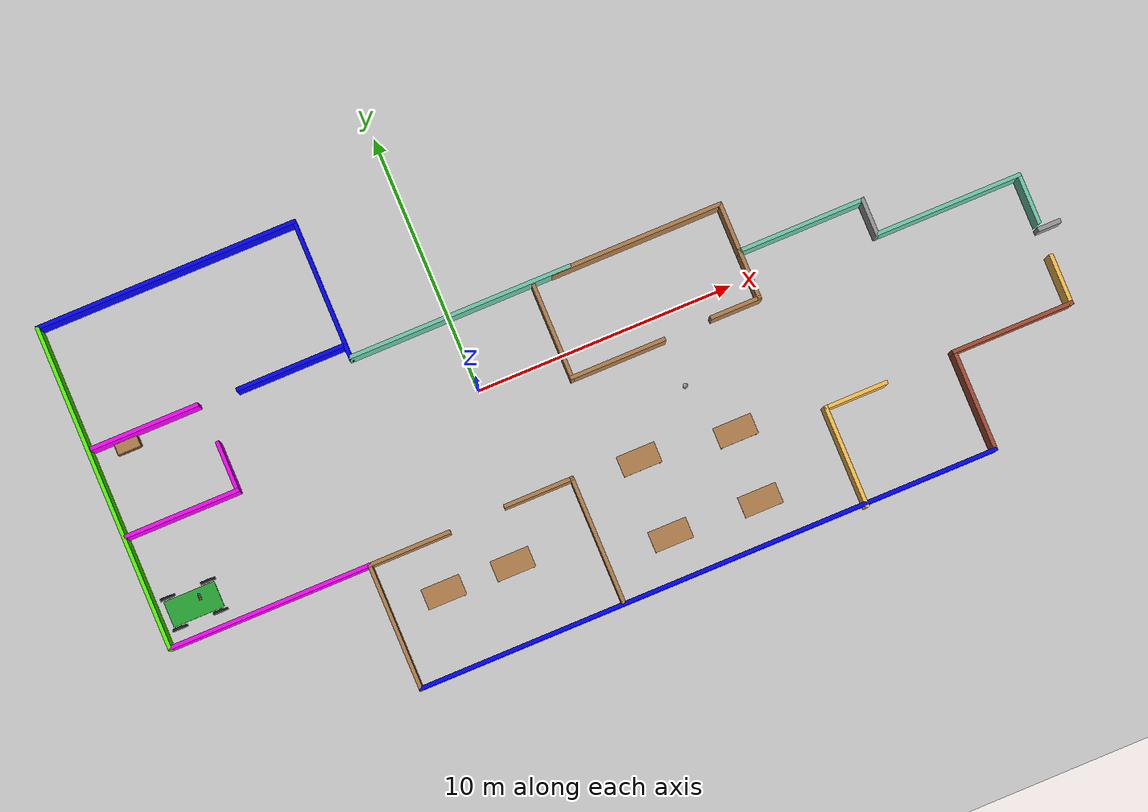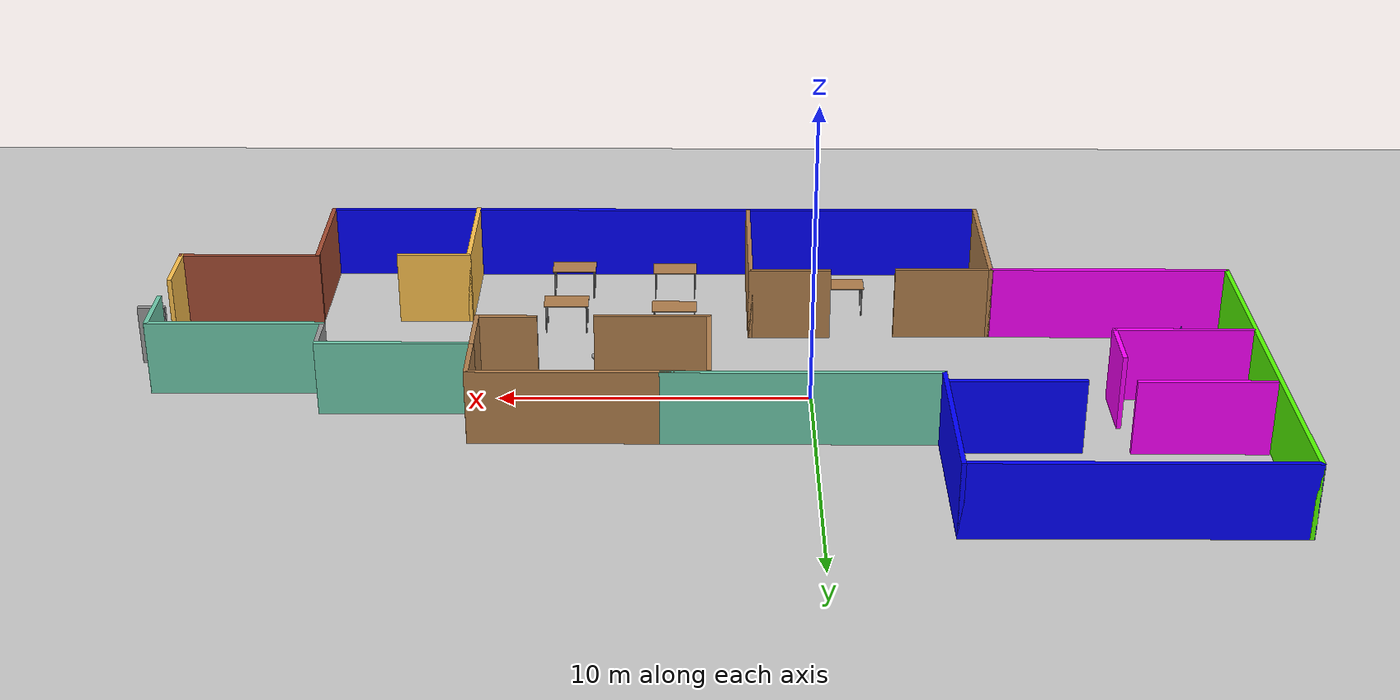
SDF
<sdf version="1.6">
 <world name="default">
  <light name="sun" type="directional">
   <pose>0 0 10 0 -0 0</pose>
   <diffuse>0.8 0.8 0.8 1</diffuse>
   <specular>0.2 0.2 0.2 1</specular>
   <attenuation>
    <range>1000</range>
    <constant>0.9</constant>
    <linear>0.01</linear>
    <quadratic>0.001</quadratic>
   </attenuation>
   <direction>-0.5 0.1 -0.9</direction>
  </light>
  <model name="ground_plane">
   <static>1</static>
   <link name="link">
    <collision name="collision">
     <geometry><plane><normal>0 0 1</normal><size>100 100</size></plane></geometry>
     <surface><friction><ode><mu>100</mu><mu2>50</mu2></ode></friction></surface>
    </collision>
    <visual name="visual">
     <cast_shadows>0</cast_shadows>
     <geometry><plane><normal>0 0 1</normal><size>100 100</size></plane></geometry>
     <material>
      <script><uri>file://media/materials/scripts/gazebo.material</uri><name>Gazebo/Grey</name></script>
     </material>
    </visual>
   </link>
  </model>
  <gravity>0 0 -9.8</gravity>
  <magnetic_field>6e-06 2.3e-05 -4.2e-05</magnetic_field>
  <atmosphere type="adiabatic"/>
  <physics name="default_physics" default="0" type="ode">
   <max_step_size>0.001</max_step_size>
   <real_time_factor>1</real_time_factor>
   <real_time_update_rate>1000</real_time_update_rate>
  </physics>
  <scene><ambient>0.4 0.4 0.4 1</ambient><background>0.7 0.7 0.7 1</background><shadows>1</shadows></scene>
  <spherical_coordinates>
   <surface_model>EARTH_WGS84</surface_model>
   <latitude_deg>0</latitude_deg>
   <longitude_deg>0</longitude_deg>
   <elevation>0</elevation>
   <heading_deg>0</heading_deg>
  </spherical_coordinates>
  <model name="NewWorld">
   <pose>3.5857 -0.61856 0 0 -0 0</pose>
   <link name="Door_0">
    <collision name="Door_0_Collision">
     <geometry><box><size>0.9 0.17 2</size></box></geometry>
     <pose>0 0 1 0 -0 0</pose>
    </collision>
    <visual name="Door_0_Visual">
     <pose>0 0 1 0 -0 0</pose>
     <geometry><box><size>0.9 0.17 2</size></box></geometry>
     <material>
      <script><uri>file://media/materials/scripts/gazebo.material</uri><name>Gazebo/Grey</name></script>
     </material>
    </visual>
    <pose>17.9089 -1.88994 0 0 -0 0</pose>
   </link>
   <link name="Wall_10">
    <collision name="Wall_10_Collision">
     <geometry><box><size>2 0.15 2.5</size></box></geometry>
     <pose>0 0 1.25 0 -0 0</pose>
    </collision>
    <visual name="Wall_10_Visual">
     <pose>0 0 1.25 0 -0 0</pose>
     <geometry><box><size>2 0.15 2.5</size></box></geometry>
     <material>
      <script><uri>file://media/materials/scripts/gazebo.material</uri><name>Gazebo/Wood</name></script>
      <ambient>1 1 1 1</ambient>
     </material>
     <meta><layer>0</layer></meta>
    </visual>
    <pose>7.1038 2.47583 0 0 0 -1.5708</pose>
   </link>
   <link name="Wall_11">
    <collision name="Wall_11_Collision">
     <geometry><box><size>5 0.15 2.5</size></box></geometry>
     <pose>0 0 1.25 0 -0 0</pose>
    </collision>
    <visual name="Wall_11_Visual">
     <pose>0 0 1.25 0 -0 0</pose>
     <geometry><box><size>5 0.15 2.5</size></box></geometry>
     <material>
      <script><uri>file://media/materials/scripts/gazebo.material</uri><name>Gazebo/Grey</name></script>
      <ambient>0.435294 0.796078 0.67451 1</ambient>
     </material>
     <meta><layer>0</layer></meta>
    </visual>
    <pose>9.5288 1.55083 0 0 -0 0</pose>
   </link>
   <link name="Wall_12">
    <collision name="Wall_12_Collision">
     <geometry><box><size>1.5 0.15 2.5</size></box></geometry>
     <pose>0 0 1.25 0 -0 0</pose>
    </collision>
    <visual name="Wall_12_Visual">
     <pose>0 0 1.25 0 -0 0</pose>
     <geometry><box><size>1.5 0.15 2.5</size></box></geometry>
     <material>
      <script><uri>file://media/materials/scripts/gazebo.material</uri><name>Gazebo/Grey</name></script>
      <ambient>1 1 1 1</ambient>
     </material>
     <meta><layer>0</layer></meta>
    </visual>
    <pose>11.9538 0.87583 0 0 0 -1.5708</pose>
   </link>
   <link name="Wall_13">
    <collision name="Wall_13_Collision">
     <geometry><box><size>5.75 0.15 2.5</size></box></geometry>
     <pose>0 0 1.25 0 -0 0</pose>
    </collision>
    <visual name="Wall_13_Visual">
     <pose>0 0 1.25 0 -0 0</pose>
     <geometry><box><size>5.75 0.15 2.5</size></box></geometry>
     <material>
      <script><uri>file://media/materials/scripts/gazebo.material</uri><name>Gazebo/Grey</name></script>
      <ambient>0.435294 0.796078 0.67451 1</ambient>
     </material>
     <meta><layer>0</layer></meta>
    </visual>
    <pose>14.7538 0.20083 0 0 -0 0</pose>
   </link>
   <link name="Wall_15">
    <collision name="Wall_15_Collision">
     <geometry><box><size>2 0.15 2.5</size></box></geometry>
     <pose>0 0 1.25 0 -0 0</pose>
    </collision>
    <visual name="Wall_15_Visual">
     <pose>0 0 1.25 0 -0 0</pose>
     <geometry><box><size>2 0.15 2.5</size></box></geometry>
     <material>
      <script><uri>file://media/materials/scripts/gazebo.material</uri><name>Gazebo/Grey</name></script>
      <ambient>0.435294 0.796078 0.67451 1</ambient>
     </material>
     <meta><layer>0</layer></meta>
    </visual>
    <pose>17.5538 -0.72417 0 0 0 -1.5708</pose>
   </link>
   <link name="Wall_18">
    <collision name="Wall_18_Collision">
     <geometry><box><size>2 0.15 2.5</size></box></geometry>
     <pose>0 0 1.25 0 -0 0</pose>
    </collision>
    <visual name="Wall_18_Visual">
     <pose>0 0 1.25 0 -0 0</pose>
     <geometry><box><size>2 0.15 2.5</size></box></geometry>
     <material>
      <script><uri>file://media/materials/scripts/gazebo.material</uri><name>Gazebo/Grey</name></script>
      <ambient>1 0.764706 0.305882 1</ambient>
     </material>
     <meta><layer>0</layer></meta>
    </visual>
    <pose>17.4962 -3.90606 0 0 0 -1.5708</pose>
   </link>
   <link name="Wall_19">
    <collision name="Wall_19_Collision">
     <geometry><box><size>4.75 0.15 2.5</size></box></geometry>
     <pose>0 0 1.25 0 -0 0</pose>
    </collision>
    <visual name="Wall_19_Visual">
     <pose>0 0 1.25 0 -0 0</pose>
     <geometry><box><size>4.75 0.15 2.5</size></box></geometry>
     <material>
      <script><uri>file://media/materials/scripts/gazebo.material</uri><name>Gazebo/Bricks</name></script>
      <ambient>1 0.764706 0.305882 1</ambient>
     </material>
     <meta><layer>0</layer></meta>
    </visual>
    <pose>15.1962 -4.83106 0 0 -0 3.14159</pose>
   </link>
   <link name="Wall_20">
    <collision name="Wall_20_Collision">
     <geometry><box><size>4 0.15 2.5</size></box></geometry>
     <pose>0 0 1.25 0 -0 0</pose>
    </collision>
    <visual name="Wall_20_Visual">
     <pose>0 0 1.25 0 -0 0</pose>
     <geometry><box><size>4 0.15 2.5</size></box></geometry>
     <material>
      <script><uri>file://media/materials/scripts/gazebo.material</uri><name>Gazebo/Bricks</name></script>
      <ambient>0.996078 0.47451 0.0196078 1</ambient>
     </material>
     <meta><layer>0</layer></meta>
    </visual>
    <pose>12.8962 -6.75606 0 0 0 -1.5708</pose>
   </link>
   <link name="Wall_21">
    <collision name="Wall_21_Collision">
     <geometry><box><size>22.75 0.15 2.5</size></box></geometry>
     <pose>0 0 1.25 0 -0 0</pose>
    </collision>
    <visual name="Wall_21_Visual">
     <pose>0 0 1.25 0 -0 0</pose>
     <geometry><box><size>22.75 0.15 2.5</size></box></geometry>
     <material>
      <script><uri>file://media/materials/scripts/gazebo.material</uri><name>Gazebo/Grey</name></script>
      <ambient>0 0 1 1</ambient>
     </material>
     <meta><layer>0</layer></meta>
    </visual>
    <pose>1.5962 -8.68106 0 0 -0 3.14159</pose>
   </link>
   <link name="Wall_22">
    <collision name="Wall_22_Collision">
     <geometry><box><size>5 0.15 2.5</size></box></geometry>
     <pose>0 0 1.25 0 -0 0</pose>
    </collision>
    <visual name="Wall_22_Visual">
     <pose>0 0 1.25 0 -0 0</pose>
     <geometry><box><size>5 0.15 2.5</size></box></geometry>
     <material>
      <script><uri>file://media/materials/scripts/gazebo.material</uri><name>Gazebo/Wood</name></script>
      <ambient>1 1 1 1</ambient>
     </material>
     <meta><layer>0</layer></meta>
    </visual>
    <pose>-9.7038 -6.25606 0 0 -0 1.5708</pose>
   </link>
   <link name="Wall_23">
    <collision name="Wall_23_Collision">
     <geometry><box><size>8 0.15 2.5</size></box></geometry>
     <pose>0 0 1.25 0 -0 0</pose>
    </collision>
    <visual name="Wall_23_Visual">
     <pose>0 0 1.25 0 -0 0</pose>
     <geometry><box><size>8 0.15 2.5</size></box></geometry>
     <material>
      <script><uri>file://media/materials/scripts/gazebo.material</uri><name>Gazebo/Grey</name></script>
      <ambient>1 0 1 1</ambient>
     </material>
     <meta><layer>0</layer></meta>
    </visual>
    <pose>-13.6288 -3.83106 0 0 -0 3.14159</pose>
   </link>
   <link name="Wall_24">
    <collision name="Wall_24_Collision">
     <geometry><box><size>12.75 0.15 2.5</size></box></geometry>
     <pose>0 0 1.25 0 -0 0</pose>
    </collision>
    <visual name="Wall_24_Visual">
     <pose>0 0 1.25 0 -0 0</pose>
     <geometry><box><size>12.75 0.15 2.5</size></box></geometry>
     <material>
      <script><uri>file://media/materials/scripts/gazebo.material</uri><name>Gazebo/Grey</name></script>
      <ambient>0.333333 1 0 1</ambient>
     </material>
     <meta><layer>0</layer></meta>
    </visual>
    <pose>-17.5538 2.46894 0 0 -0 1.5708</pose>
   </link>
   <link name="Wall_25">
    <collision name="Wall_25_Collision">
     <geometry><box><size>10.25 0.15 2.5</size></box></geometry>
     <pose>0 0 1.25 0 -0 0</pose>
    </collision>
    <visual name="Wall_25_Visual">
     <pose>0 0 1.25 0 -0 0</pose>
     <geometry><box><size>10.25 0.15 2.5</size></box></geometry>
     <material>
      <script><uri>file://media/materials/scripts/gazebo.material</uri><name>Gazebo/Grey</name></script>
      <ambient>0 0 1 1</ambient>
     </material>
     <meta><layer>0</layer></meta>
    </visual>
    <pose>-12.5038 8.76894 0 0 -0 0</pose>
   </link>
   <link name="Wall_26">
    <collision name="Wall_26_Collision">
     <geometry><box><size>5.5 0.15 2.5</size></box></geometry>
     <pose>0 0 1.25 0 -0 0</pose>
    </collision>
    <visual name="Wall_26_Visual">
     <pose>0 0 1.25 0 -0 0</pose>
     <geometry><box><size>5.5 0.15 2.5</size></box></geometry>
     <material>
      <script><uri>file://media/materials/scripts/gazebo.material</uri><name>Gazebo/Grey</name></script>
      <ambient>0 0 1 1</ambient>
     </material>
     <meta><layer>0</layer></meta>
    </visual>
    <pose>-7.4538 6.09394 0 0 0 -1.5708</pose>
   </link>
   <link name="Wall_27">
    <collision name="Wall_27_Collision">
     <geometry><box><size>8.75 0.15 2.5</size></box></geometry>
     <pose>0 0 1.25 0 -0 0</pose>
    </collision>
    <visual name="Wall_27_Visual">
     <pose>0 0 1.25 0 -0 0</pose>
     <geometry><box><size>8.75 0.15 2.5</size></box></geometry>
     <material>
      <script><uri>file://media/materials/scripts/gazebo.material</uri><name>Gazebo/Grey</name></script>
      <ambient>0.435294 0.796078 0.67451 1</ambient>
     </material>
     <meta><layer>0</layer></meta>
    </visual>
    <pose>-3.1538 3.41894 0 0 -0 0</pose>
   </link>
   <link name="Wall_29">
    <collision name="Wall_29_Collision">
     <geometry><box><size>3.75 0.15 2.5</size></box></geometry>
     <pose>0 0 1.25 0 -0 0</pose>
    </collision>
    <visual name="Wall_29_Visual">
     <pose>0 0 1.25 0 -0 0</pose>
     <geometry><box><size>3.75 0.15 2.5</size></box></geometry>
     <material>
      <script><uri>file://media/materials/scripts/gazebo.material</uri><name>Gazebo/Wood</name></script>
      <ambient>1 1 1 1</ambient>
     </material>
     <meta><layer>0</layer></meta>
    </visual>
    <pose>-0.300811 1.43676 0 0 0 -1.5708</pose>
   </link>
   <link name="Wall_30">
    <collision name="Wall_30_Collision">
     <geometry><box><size>3.75 0.15 2.5</size></box></geometry>
     <pose>0 0 1.25 0 -0 0</pose>
    </collision>
    <visual name="Wall_30_Visual">
     <pose>0 0 1.25 0 -0 0</pose>
     <geometry><box><size>3.75 0.15 2.5</size></box></geometry>
     <material>
      <script><uri>file://media/materials/scripts/gazebo.material</uri><name>Gazebo/Wood</name></script>
      <ambient>1 1 1 1</ambient>
     </material>
     <meta><layer>0</layer></meta>
    </visual>
    <pose>1.49919 -0.363238 0 0 -0 0</pose>
   </link>
   <link name="Wall_35">
    <collision name="Wall_35_Collision">
     <geometry><box><size>2 0.15 2.5</size></box></geometry>
     <pose>0 0 1.25 0 -0 0</pose>
    </collision>
    <visual name="Wall_35_Visual">
     <pose>0 0 1.25 0 -0 0</pose>
     <geometry><box><size>2 0.15 2.5</size></box></geometry>
     <material>
      <script><uri>file://media/materials/scripts/gazebo.material</uri><name>Gazebo/Wood</name></script>
      <ambient>1 1 1 1</ambient>
     </material>
     <meta><layer>0</layer></meta>
    </visual>
    <pose>7.1038 0.62583 0 0 0 -1.5708</pose>
   </link>
   <link name="Wall_36">
    <collision name="Wall_36_Collision">
     <geometry><box><size>2 0.15 2.5</size></box></geometry>
     <pose>0 0 1.25 0 -0 0</pose>
    </collision>
    <visual name="Wall_36_Visual">
     <pose>0 0 1.25 0 -0 0</pose>
     <geometry><box><size>2 0.15 2.5</size></box></geometry>
     <material>
      <script><uri>file://media/materials/scripts/gazebo.material</uri><name>Gazebo/Wood</name></script>
      <ambient>1 1 1 1</ambient>
     </material>
     <meta><layer>0</layer></meta>
    </visual>
    <pose>6.1788 -0.29917 0 0 -0 3.14159</pose>
   </link>
   <link name="Wall_38">
    <collision name="Wall_38_Collision">
     <geometry><box><size>3.25 0.15 2.5</size></box></geometry>
     <pose>0 0 1.25 0 -0 0</pose>
    </collision>
    <visual name="Wall_38_Visual">
     <pose>0 0 1.25 0 -0 0</pose>
     <geometry><box><size>3.25 0.15 2.5</size></box></geometry>
     <material>
      <script><uri>file://media/materials/scripts/gazebo.material</uri><name>Gazebo/Wood</name></script>
      <ambient>1 1 1 1</ambient>
     </material>
     <meta><layer>0</layer></meta>
    </visual>
    <pose>-8.1538 -3.83106 0 0 -0 0</pose>
   </link>
   <link name="Wall_40">
    <collision name="Wall_40_Collision">
     <geometry><box><size>2.75 0.15 2.5</size></box></geometry>
     <pose>0 0 1.25 0 -0 0</pose>
    </collision>
    <visual name="Wall_40_Visual">
     <pose>0 0 1.25 0 -0 0</pose>
     <geometry><box><size>2.75 0.15 2.5</size></box></geometry>
     <material>
      <script><uri>file://media/materials/scripts/gazebo.material</uri><name>Gazebo/Wood</name></script>
      <ambient>1 1 1 1</ambient>
     </material>
     <meta><layer>0</layer></meta>
    </visual>
    <pose>-3.00885 -3.74816 0 0 -0 0</pose>
   </link>
   <link name="Wall_43">
    <collision name="Wall_43_Collision">
     <geometry><box><size>5 0.15 2.5</size></box></geometry>
     <pose>0 0 1.25 0 -0 0</pose>
    </collision>
    <visual name="Wall_43_Visual">
     <pose>0 0 1.25 0 -0 0</pose>
     <geometry><box><size>5 0.15 2.5</size></box></geometry>
     <material>
      <script><uri>file://media/materials/scripts/gazebo.material</uri><name>Gazebo/Wood</name></script>
      <ambient>1 1 1 1</ambient>
     </material>
     <meta><layer>0</layer></meta>
    </visual>
    <pose>-1.70885 -6.17316 0 0 0 -1.5708</pose>
   </link>
   <link name="Wall_45">
    <collision name="Wall_45_Collision">
     <geometry><box><size>4 0.15 2.5</size></box></geometry>
     <pose>0 0 1.25 0 -0 0</pose>
    </collision>
    <visual name="Wall_45_Visual">
     <pose>0 0 1.25 0 -0 0</pose>
     <geometry><box><size>4 0.15 2.5</size></box></geometry>
     <material>
      <script><uri>file://media/materials/scripts/gazebo.material</uri><name>Gazebo/Grey</name></script>
      <ambient>1 0.764706 0.305882 1</ambient>
     </material>
     <meta><layer>0</layer></meta>
    </visual>
    <pose>7.79451 -6.84394 0 0 -0 1.5708</pose>
   </link>
   <link name="Wall_46">
    <collision name="Wall_46_Collision">
     <geometry><box><size>2.5 0.15 2.5</size></box></geometry>
     <pose>0 0 1.25 0 -0 0</pose>
    </collision>
    <visual name="Wall_46_Visual">
     <pose>0 0 1.25 0 -0 0</pose>
     <geometry><box><size>2.5 0.15 2.5</size></box></geometry>
     <material>
      <script><uri>file://media/materials/scripts/gazebo.material</uri><name>Gazebo/Grey</name></script>
      <ambient>1 0.764706 0.305882 1</ambient>
     </material>
     <meta><layer>0</layer></meta>
    </visual>
    <pose>8.96951 -4.91894 0 0 -0 0</pose>
   </link>
   <link name="Wall_49">
    <collision name="Wall_49_Collision">
     <geometry><box><size>4.25 0.15 2.5</size></box></geometry>
     <pose>0 0 1.25 0 -0 0</pose>
    </collision>
    <visual name="Wall_49_Visual">
     <pose>0 0 1.25 0 -0 0</pose>
     <geometry><box><size>4.25 0.15 2.5</size></box></geometry>
     <material>
      <script><uri>file://media/materials/scripts/gazebo.material</uri><name>Gazebo/Grey</name></script>
      <ambient>1 0 1 1</ambient>
     </material>
     <meta><layer>0</layer></meta>
    </visual>
    <pose>-15.3275 3.95742 0 0 -0 0</pose>
   </link>
   <link name="Wall_55">
    <collision name="Wall_55_Collision">
     <geometry><box><size>4.25 0.15 2.5</size></box></geometry>
     <pose>0 0 1.25 0 -0 0</pose>
    </collision>
    <visual name="Wall_55_Visual">
     <pose>0 0 1.25 0 -0 0</pose>
     <geometry><box><size>4.25 0.15 2.5</size></box></geometry>
     <material>
      <script><uri>file://media/materials/scripts/gazebo.material</uri><name>Gazebo/Grey</name></script>
      <ambient>0 0 1 1</ambient>
     </material>
     <meta><layer>0</layer></meta>
    </visual>
    <pose>-9.61588 3.90711 0 0 -0 0</pose>
   </link>
   <link name="Wall_57">
    <collision name="Wall_57_Collision">
     <geometry><box><size>4.5 0.15 2.5</size></box></geometry>
     <pose>0 0 1.25 0 -0 0</pose>
    </collision>
    <visual name="Wall_57_Visual">
     <pose>0 0 1.25 0 -0 0</pose>
     <geometry><box><size>4.5 0.15 2.5</size></box></geometry>
     <material>
      <script><uri>file://media/materials/scripts/gazebo.material</uri><name>Gazebo/Grey</name></script>
      <ambient>1 0 1 1</ambient>
     </material>
     <meta><layer>0</layer></meta>
    </visual>
    <pose>-15.2745 0.523078 0 0 -0 0</pose>
   </link>
   <link name="Wall_58">
    <collision name="Wall_58_Collision">
     <geometry><box><size>2 0.15 2.5</size></box></geometry>
     <pose>0 0 1.25 0 -0 0</pose>
    </collision>
    <visual name="Wall_58_Visual">
     <pose>0 0 1.25 0 -0 0</pose>
     <geometry><box><size>2 0.15 2.5</size></box></geometry>
     <material>
      <script><uri>file://media/materials/scripts/gazebo.material</uri><name>Gazebo/Grey</name></script>
      <ambient>1 0 1 1</ambient>
     </material>
     <meta><layer>0</layer></meta>
    </visual>
    <pose>-13.0995 1.44808 0 0 -0 1.5708</pose>
   </link>
   <link name="Wall_9">
    <collision name="Wall_9_Collision">
     <geometry><box><size>6.75 0.15 2.5</size></box></geometry>
     <pose>0 0 1.25 0 -0 0</pose>
    </collision>
    <visual name="Wall_9_Visual">
     <pose>0 0 1.25 0 -0 0</pose>
     <geometry><box><size>6.75 0.15 2.5</size></box></geometry>
     <material>
      <script><uri>file://media/materials/scripts/gazebo.material</uri><name>Gazebo/Wood</name></script>
      <ambient>1 1 1 1</ambient>
     </material>
     <meta><layer>0</layer></meta>
    </visual>
    <pose>3.8038 3.40083 0 0 -0 0</pose>
   </link>
   <static>1</static>
  </model>
  <model name="bookshelf">
   <static>1</static>
   <link name="link">
    <inertial><mass>1</mass></inertial>
    <collision name="back">
     <pose>0 0.005 0.6 0 -0 0</pose>
     <geometry><box><size>0.9 0.01 1.2</size></box></geometry>
    </collision>
    <visual name="visual1">
     <pose>0 0.005 0.6 0 -0 0</pose>
     <geometry><box><size>0.9 0.01 1.2</size></box></geometry>
     <material>
      <script><uri>file://media/materials/scripts/gazebo.material</uri><name>Gazebo/Wood</name></script>
     </material>
    </visual>
    <collision name="left_side">
     <pose>0.45 -0.195 0.6 0 -0 0</pose>
     <geometry><box><size>0.02 0.4 1.2</size></box></geometry>
    </collision>
    <visual name="visual2">
     <pose>0.45 -0.195 0.6 0 -0 0</pose>
     <geometry><box><size>0.02 0.4 1.2</size></box></geometry>
     <material>
      <script><uri>file://media/materials/scripts/gazebo.material</uri><name>Gazebo/Wood</name></script>
     </material>
    </visual>
    <collision name="right_side">
     <pose>-0.45 -0.195 0.6 0 -0 0</pose>
     <geometry><box><size>0.02 0.4 1.2</size></box></geometry>
    </collision>
    <visual name="visual3">
     <pose>-0.45 -0.195 0.6 0 -0 0</pose>
     <geometry><box><size>0.02 0.4 1.2</size></box></geometry>
     <material>
      <script><uri>file://media/materials/scripts/gazebo.material</uri><name>Gazebo/Wood</name></script>
     </material>
    </visual>
    <collision name="bottom">
     <pose>0 -0.195 0.03 0 -0 0</pose>
     <geometry><box><size>0.88 0.4 0.06</size></box></geometry>
    </collision>
    <visual name="visual4">
     <pose>0 -0.195 0.03 0 -0 0</pose>
     <geometry><box><size>0.88 0.4 0.06</size></box></geometry>
     <material>
      <script><uri>file://media/materials/scripts/gazebo.material</uri><name>Gazebo/Wood</name></script>
     </material>
    </visual>
    <collision name="top">
     <pose>0 -0.195 1.19 0 -0 0</pose>
     <geometry><box><size>0.88 0.4 0.02</size></box></geometry>
    </collision>
    <visual name="visual5">
     <pose>0 -0.195 1.19 0 -0 0</pose>
     <geometry><box><size>0.88 0.4 0.02</size></box></geometry>
     <material>
      <script><uri>file://media/materials/scripts/gazebo.material</uri><name>Gazebo/Wood</name></script>
     </material>
    </visual>
    <collision name="low_shelf">
     <pose>0 -0.195 0.43 0 -0 0</pose>
     <geometry><box><size>0.88 0.4 0.02</size></box></geometry>
    </collision>
    <visual name="visual6">
     <pose>0 -0.195 0.43 0 -0 0</pose>
     <geometry><box><size>0.88 0.4 0.02</size></box></geometry>
     <material>
      <script><uri>file://media/materials/scripts/gazebo.material</uri><name>Gazebo/Wood</name></script>
     </material>
    </visual>
    <collision name="high_shelf">
     <pose>0 -0.195 0.8 0 -0 0</pose>
     <geometry><box><size>0.88 0.4 0.02</size></box></geometry>
    </collision>
    <visual name="visual7">
     <pose>0 -0.195 0.8 0 -0 0</pose>
     <geometry><box><size>0.88 0.4 0.02</size></box></geometry>
     <material>
      <script><uri>file://media/materials/scripts/gazebo.material</uri><name>Gazebo/Wood</name></script>
     </material>
    </visual>
   </link>
   <pose>-12.6219 3.21968 0 0 -0 0</pose>
  </model>
  <model name="car">
   <link name="chassis">
    <pose>0 0 0.3 0 -0 0</pose>
    <collision name="collision"><geometry><box><size>2 1 0.2</size></box></geometry></collision>
    <visual name="visual">
     <geometry><box><size>2 1 0.2</size></box></geometry>
     <material>
      <script><uri>file://media/materials/scripts/gazebo.material</uri><name>Gazebo/Green</name></script>
     </material>
    </visual>
    <inertial>
     <inertia><ixx>1</ixx><ixy>0</ixy><ixz>0</ixz><iyy>1</iyy><iyz>0</iyz><izz>1</izz></inertia>
     <mass>1</mass>
    </inertial>
   </link>
   <link name="front_left_wheel">
    <pose>0.8 0.6 0.3 -0 1.5707 1.5707</pose>
    <collision name="collision">
     <geometry><cylinder><radius>0.3</radius><length>0.1</length></cylinder></geometry>
    </collision>
    <visual name="visual">
     <geometry><cylinder><radius>0.3</radius><length>0.1</length></cylinder></geometry>
     <material>
      <script><uri>file://media/materials/scripts/gazebo.material</uri><name>Gazebo/Black</name></script>
     </material>
    </visual>
    <inertial>
     <inertia><ixx>1</ixx><ixy>0</ixy><ixz>0</ixz><iyy>1</iyy><iyz>0</iyz><izz>1</izz></inertia>
     <mass>1</mass>
    </inertial>
   </link>
   <link name="front_right_wheel">
    <pose>0.8 -0.6 0.3 -0 1.5707 1.5707</pose>
    <collision name="collision">
     <geometry><cylinder><radius>0.3</radius><length>0.1</length></cylinder></geometry>
    </collision>
    <visual name="visual">
     <geometry><cylinder><radius>0.3</radius><length>0.1</length></cylinder></geometry>
     <material>
      <script><uri>file://media/materials/scripts/gazebo.material</uri><name>Gazebo/Black</name></script>
     </material>
    </visual>
    <inertial>
     <inertia><ixx>1</ixx><ixy>0</ixy><ixz>0</ixz><iyy>1</iyy><iyz>0</iyz><izz>1</izz></inertia>
     <mass>1</mass>
    </inertial>
   </link>
   <link name="back_right_wheel">
    <pose>-0.8 -0.6 0.3 -0 1.5707 1.5707</pose>
    <collision name="collision">
     <geometry><cylinder><radius>0.3</radius><length>0.1</length></cylinder></geometry>
    </collision>
    <visual name="visual">
     <geometry><cylinder><radius>0.3</radius><length>0.1</length></cylinder></geometry>
     <material>
      <script><uri>file://media/materials/scripts/gazebo.material</uri><name>Gazebo/Black</name></script>
     </material>
    </visual>
    <inertial>
     <inertia><ixx>1</ixx><ixy>0</ixy><ixz>0</ixz><iyy>1</iyy><iyz>0</iyz><izz>1</izz></inertia>
     <mass>1</mass>
    </inertial>
   </link>
   <link name="back_left_wheel">
    <pose>-0.8 0.6 0.3 -0 1.5707 1.5707</pose>
    <collision name="collision">
     <geometry><cylinder><radius>0.3</radius><length>0.1</length></cylinder></geometry>
    </collision>
    <visual name="visual">
     <geometry><cylinder><radius>0.3</radius><length>0.1</length></cylinder></geometry>
     <material>
      <script><uri>file://media/materials/scripts/gazebo.material</uri><name>Gazebo/Black</name></script>
     </material>
    </visual>
    <inertial>
     <inertia><ixx>1</ixx><ixy>0</ixy><ixz>0</ixz><iyy>1</iyy><iyz>0</iyz><izz>1</izz></inertia>
     <mass>1</mass>
    </inertial>
   </link>
   <link name="gas_pedal">
    <pose>0.3 0.1 0.5 0 -0 0</pose>
    <collision name="collision"><geometry><box><size>0.1 0.1 0.1</size></box></geometry></collision>
    <visual name="visual">
     <geometry><box><size>0.1 0.1 0.1</size></box></geometry>
     <material>
      <script><uri>file://media/materials/scripts/gazebo.material</uri><name>Gazebo/Red</name></script>
     </material>
    </visual>
    <inertial>
     <inertia><ixx>1</ixx><ixy>0</ixy><ixz>0</ixz><iyy>1</iyy><iyz>0</iyz><izz>1</izz></inertia>
     <mass>1</mass>
    </inertial>
   </link>
   <link name="brake_pedal">
    <pose>0.3 0.25 0.5 0 -0 0</pose>
    <collision name="collision"><geometry><box><size>0.1 0.1 0.1</size></box></geometry></collision>
    <visual name="visual">
     <geometry><box><size>0.1 0.1 0.1</size></box></geometry>
     <material>
      <script><uri>file://media/materials/scripts/gazebo.material</uri><name>Gazebo/Blue</name></script>
     </material>
    </visual>
    <inertial>
     <inertia><ixx>1</ixx><ixy>0</ixy><ixz>0</ixz><iyy>1</iyy><iyz>0</iyz><izz>1</izz></inertia>
     <mass>1</mass>
    </inertial>
   </link>
   <link name="steering_wheel">
    <pose>0.3 0.2 1 0 1.5707 0</pose>
    <collision name="collision">
     <geometry><cylinder><radius>0.1</radius><length>0.01</length></cylinder></geometry>
    </collision>
    <visual name="visual">
     <geometry><cylinder><radius>0.1</radius><length>0.01</length></cylinder></geometry>
     <material>
      <script><uri>file://media/materials/scripts/gazebo.material</uri><name>Gazebo/Blue</name></script>
     </material>
    </visual>
    <inertial>
     <inertia><ixx>1</ixx><ixy>0</ixy><ixz>0</ixz><iyy>1</iyy><iyz>0</iyz><izz>1</izz></inertia>
     <mass>1</mass>
    </inertial>
   </link>
   <joint name="gas_joint" type="prismatic">
    <parent>chassis</parent>
    <child>gas_pedal</child>
    <axis>
     <xyz>1 0 0</xyz>
     <limit><lower>0</lower><upper>0.2</upper></limit>
     <use_parent_model_frame>1</use_parent_model_frame>
     <dynamics><spring_reference>0</spring_reference><spring_stiffness>0</spring_stiffness></dynamics>
    </axis>
   </joint>
   <joint name="brake_joint" type="prismatic">
    <parent>chassis</parent>
    <child>brake_pedal</child>
    <axis>
     <xyz>1 0 0</xyz>
     <limit><lower>0</lower><upper>0.2</upper></limit>
     <use_parent_model_frame>1</use_parent_model_frame>
     <dynamics><spring_reference>0</spring_reference><spring_stiffness>0</spring_stiffness></dynamics>
    </axis>
   </joint>
   <joint name="steering_joint" type="revolute">
    <parent>chassis</parent>
    <child>steering_wheel</child>
    <axis>
     <xyz>1 0 0</xyz>
     <limit><lower>-7.853</lower><upper>7.853</upper></limit>
     <use_parent_model_frame>1</use_parent_model_frame>
     <dynamics><spring_reference>0</spring_reference><spring_stiffness>0</spring_stiffness></dynamics>
    </axis>
   </joint>
   <joint name="front_left_joint" type="revolute2">
    <parent>chassis</parent>
    <child>front_left_wheel</child>
    <axis>
     <xyz>0 0 1</xyz>
     <limit><lower>8.15514e-06</lower><upper>8.15514e-06</upper></limit>
     <use_parent_model_frame>1</use_parent_model_frame>
     <dynamics><spring_reference>0</spring_reference><spring_stiffness>0</spring_stiffness></dynamics>
    </axis>
    <axis2>
     <xyz>0 1 0</xyz>
     <use_parent_model_frame>1</use_parent_model_frame>
     <dynamics><spring_reference>0</spring_reference><spring_stiffness>0</spring_stiffness></dynamics>
    </axis2>
    <physics><ode><limit><cfm>0</cfm><erp>0.9</erp></limit></ode></physics>
   </joint>
   <joint name="front_right_joint" type="revolute2">
    <parent>chassis</parent>
    <child>front_right_wheel</child>
    <axis>
     <xyz>0 0 1</xyz>
     <limit><lower>8.15514e-06</lower><upper>8.15514e-06</upper></limit>
     <use_parent_model_frame>1</use_parent_model_frame>
     <dynamics><spring_reference>0</spring_reference><spring_stiffness>0</spring_stiffness></dynamics>
    </axis>
    <axis2>
     <xyz>0 1 0</xyz>
     <use_parent_model_frame>1</use_parent_model_frame>
     <dynamics><spring_reference>0</spring_reference><spring_stiffness>0</spring_stiffness></dynamics>
    </axis2>
    <physics><ode><limit><cfm>0</cfm><erp>0.9</erp></limit></ode></physics>
   </joint>
   <joint name="back_right_joint" type="revolute2">
    <parent>chassis</parent>
    <child>back_right_wheel</child>
    <axis>
     <xyz>0 0 1</xyz>
     <limit><lower>0</lower><upper>0</upper></limit>
     <use_parent_model_frame>1</use_parent_model_frame>
     <dynamics><spring_reference>0</spring_reference><spring_stiffness>0</spring_stiffness></dynamics>
    </axis>
    <axis2>
     <xyz>0 1 0</xyz>
     <use_parent_model_frame>1</use_parent_model_frame>
     <dynamics><spring_reference>0</spring_reference><spring_stiffness>0</spring_stiffness></dynamics>
    </axis2>
    <physics><ode><limit><cfm>0</cfm><erp>0.9</erp></limit></ode></physics>
   </joint>
   <joint name="back_left_joint" type="revolute2">
    <parent>chassis</parent>
    <child>back_left_wheel</child>
    <axis>
     <xyz>0 0 1</xyz>
     <limit><lower>0</lower><upper>0</upper></limit>
     <use_parent_model_frame>1</use_parent_model_frame>
     <dynamics><spring_reference>0</spring_reference><spring_stiffness>0</spring_stiffness></dynamics>
    </axis>
    <axis2>
     <xyz>0 1 0</xyz>
     <use_parent_model_frame>1</use_parent_model_frame>
     <dynamics><spring_reference>0</spring_reference><spring_stiffness>0</spring_stiffness></dynamics>
    </axis2>
    <physics><ode><limit><cfm>0</cfm><erp>0.9</erp></limit></ode></physics>
   </joint>
   <plugin name="vehicle" filename="libVehiclePlugin.so">
    <front_left>front_left_joint</front_left>
    <front_right>front_right_joint</front_right>
    <back_left>back_left_joint</back_left>
    <back_right>back_right_joint</back_right>
    <gas>gas_joint</gas>
    <brake>brake_joint</brake>
    <steering>steering_joint</steering>
    <front_power>10</front_power>
    <rear_power>10</rear_power>
    <tire_angle_range>0.5</tire_angle_range>
    <max_speed>10</max_speed>
    <aero_load>0.1</aero_load>
   </plugin>
   <pose>-12.6314 -3.24403 -0.002614 -0.000273 0.000907 0.001852</pose>
  </model>
  <model name="table">
   <static>1</static>
   <link name="link">
    <collision name="surface">
     <pose>0 0 1 0 -0 0</pose>
     <geometry><box><size>1.5 0.8 0.03</size></box></geometry>
     <surface><friction><ode><mu>0.6</mu><mu2>0.6</mu2></ode></friction></surface>
    </collision>
    <visual name="visual1">
     <pose>0 0 1 0 -0 0</pose>
     <geometry><box><size>1.5 0.8 0.03</size></box></geometry>
     <material>
      <script><uri>file://media/materials/scripts/gazebo.material</uri><name>Gazebo/Wood</name></script>
     </material>
    </visual>
    <collision name="front_left_leg">
     <pose>0.68 0.38 0.5 0 -0 0</pose>
     <geometry><cylinder><radius>0.02</radius><length>1</length></cylinder></geometry>
    </collision>
    <visual name="front_left_leg">
     <pose>0.68 0.38 0.5 0 -0 0</pose>
     <geometry><cylinder><radius>0.02</radius><length>1</length></cylinder></geometry>
     <material>
      <script><uri>file://media/materials/scripts/gazebo.material</uri><name>Gazebo/Grey</name></script>
     </material>
    </visual>
    <collision name="front_right_leg">
     <pose>0.68 -0.38 0.5 0 -0 0</pose>
     <geometry><cylinder><radius>0.02</radius><length>1</length></cylinder></geometry>
    </collision>
    <visual name="front_right_leg">
     <pose>0.68 -0.38 0.5 0 -0 0</pose>
     <geometry><cylinder><radius>0.02</radius><length>1</length></cylinder></geometry>
     <material>
      <script><uri>file://media/materials/scripts/gazebo.material</uri><name>Gazebo/Grey</name></script>
     </material>
    </visual>
    <collision name="back_right_leg">
     <pose>-0.68 -0.38 0.5 0 -0 0</pose>
     <geometry><cylinder><radius>0.02</radius><length>1</length></cylinder></geometry>
    </collision>
    <visual name="back_right_leg">
     <pose>-0.68 -0.38 0.5 0 -0 0</pose>
     <geometry><cylinder><radius>0.02</radius><length>1</length></cylinder></geometry>
     <material>
      <script><uri>file://media/materials/scripts/gazebo.material</uri><name>Gazebo/Grey</name></script>
     </material>
    </visual>
    <collision name="back_left_leg">
     <pose>-0.68 0.38 0.5 0 -0 0</pose>
     <geometry><cylinder><radius>0.02</radius><length>1</length></cylinder></geometry>
    </collision>
    <visual name="back_left_leg">
     <pose>-0.68 0.38 0.5 0 -0 0</pose>
     <geometry><cylinder><radius>0.02</radius><length>1</length></cylinder></geometry>
     <material>
      <script><uri>file://media/materials/scripts/gazebo.material</uri><name>Gazebo/Grey</name></script>
     </material>
    </visual>
   </link>
   <pose>-4.01862 -6.35762 0 0 -0 0</pose>
  </model>
  <model name="table_clone">
   <static>1</static>
   <link name="link">
    <collision name="surface">
     <pose>0 0 1 0 -0 0</pose>
     <geometry><box><size>1.5 0.8 0.03</size></box></geometry>
     <surface><friction><ode><mu>0.6</mu><mu2>0.6</mu2></ode></friction></surface>
    </collision>
    <visual name="visual1">
     <pose>0 0 1 0 -0 0</pose>
     <geometry><box><size>1.5 0.8 0.03</size></box></geometry>
     <material>
      <script><uri>file://media/materials/scripts/gazebo.material</uri><name>Gazebo/Wood</name></script>
     </material>
    </visual>
    <collision name="front_left_leg">
     <pose>0.68 0.38 0.5 0 -0 0</pose>
     <geometry><cylinder><radius>0.02</radius><length>1</length></cylinder></geometry>
    </collision>
    <visual name="front_left_leg">
     <pose>0.68 0.38 0.5 0 -0 0</pose>
     <geometry><cylinder><radius>0.02</radius><length>1</length></cylinder></geometry>
     <material>
      <script><uri>file://media/materials/scripts/gazebo.material</uri><name>Gazebo/Grey</name></script>
     </material>
    </visual>
    <collision name="front_right_leg">
     <pose>0.68 -0.38 0.5 0 -0 0</pose>
     <geometry><cylinder><radius>0.02</radius><length>1</length></cylinder></geometry>
    </collision>
    <visual name="front_right_leg">
     <pose>0.68 -0.38 0.5 0 -0 0</pose>
     <geometry><cylinder><radius>0.02</radius><length>1</length></cylinder></geometry>
     <material>
      <script><uri>file://media/materials/scripts/gazebo.material</uri><name>Gazebo/Grey</name></script>
     </material>
    </visual>
    <collision name="back_right_leg">
     <pose>-0.68 -0.38 0.5 0 -0 0</pose>
     <geometry><cylinder><radius>0.02</radius><length>1</length></cylinder></geometry>
    </collision>
    <visual name="back_right_leg">
     <pose>-0.68 -0.38 0.5 0 -0 0</pose>
     <geometry><cylinder><radius>0.02</radius><length>1</length></cylinder></geometry>
     <material>
      <script><uri>file://media/materials/scripts/gazebo.material</uri><name>Gazebo/Grey</name></script>
     </material>
    </visual>
    <collision name="back_left_leg">
     <pose>-0.68 0.38 0.5 0 -0 0</pose>
     <geometry><cylinder><radius>0.02</radius><length>1</length></cylinder></geometry>
    </collision>
    <visual name="back_left_leg">
     <pose>-0.68 0.38 0.5 0 -0 0</pose>
     <geometry><cylinder><radius>0.02</radius><length>1</length></cylinder></geometry>
     <material>
      <script><uri>file://media/materials/scripts/gazebo.material</uri><name>Gazebo/Grey</name></script>
     </material>
    </visual>
   </link>
   <pose>-1.30014 -6.38237 0 0 -0 0</pose>
  </model>
  <model name="table_0">
   <static>1</static>
   <link name="link">
    <collision name="surface">
     <pose>0 0 1 0 -0 0</pose>
     <geometry><box><size>1.5 0.8 0.03</size></box></geometry>
     <surface><friction><ode><mu>0.6</mu><mu2>0.6</mu2></ode></friction></surface>
    </collision>
    <visual name="visual1">
     <pose>0 0 1 0 -0 0</pose>
     <geometry><box><size>1.5 0.8 0.03</size></box></geometry>
     <material>
      <script><uri>file://media/materials/scripts/gazebo.material</uri><name>Gazebo/Wood</name></script>
     </material>
    </visual>
    <collision name="front_left_leg">
     <pose>0.68 0.38 0.5 0 -0 0</pose>
     <geometry><cylinder><radius>0.02</radius><length>1</length></cylinder></geometry>
    </collision>
    <visual name="front_left_leg">
     <pose>0.68 0.38 0.5 0 -0 0</pose>
     <geometry><cylinder><radius>0.02</radius><length>1</length></cylinder></geometry>
     <material>
      <script><uri>file://media/materials/scripts/gazebo.material</uri><name>Gazebo/Grey</name></script>
     </material>
    </visual>
    <collision name="front_right_leg">
     <pose>0.68 -0.38 0.5 0 -0 0</pose>
     <geometry><cylinder><radius>0.02</radius><length>1</length></cylinder></geometry>
    </collision>
    <visual name="front_right_leg">
     <pose>0.68 -0.38 0.5 0 -0 0</pose>
     <geometry><cylinder><radius>0.02</radius><length>1</length></cylinder></geometry>
     <material>
      <script><uri>file://media/materials/scripts/gazebo.material</uri><name>Gazebo/Grey</name></script>
     </material>
    </visual>
    <collision name="back_right_leg">
     <pose>-0.68 -0.38 0.5 0 -0 0</pose>
     <geometry><cylinder><radius>0.02</radius><length>1</length></cylinder></geometry>
    </collision>
    <visual name="back_right_leg">
     <pose>-0.68 -0.38 0.5 0 -0 0</pose>
     <geometry><cylinder><radius>0.02</radius><length>1</length></cylinder></geometry>
     <material>
      <script><uri>file://media/materials/scripts/gazebo.material</uri><name>Gazebo/Grey</name></script>
     </material>
    </visual>
    <collision name="back_left_leg">
     <pose>-0.68 0.38 0.5 0 -0 0</pose>
     <geometry><cylinder><radius>0.02</radius><length>1</length></cylinder></geometry>
    </collision>
    <visual name="back_left_leg">
     <pose>-0.68 0.38 0.5 0 -0 0</pose>
     <geometry><cylinder><radius>0.02</radius><length>1</length></cylinder></geometry>
     <material>
      <script><uri>file://media/materials/scripts/gazebo.material</uri><name>Gazebo/Grey</name></script>
     </material>
    </visual>
   </link>
   <pose>4.42511 -7.61205 0 0 -0 0</pose>
  </model>
  <model name="table_0_clone">
   <static>1</static>
   <link name="link">
    <collision name="surface">
     <pose>0 0 1 0 -0 0</pose>
     <geometry><box><size>1.5 0.8 0.03</size></box></geometry>
     <surface><friction><ode><mu>0.6</mu><mu2>0.6</mu2></ode></friction></surface>
    </collision>
    <visual name="visual1">
     <pose>0 0 1 0 -0 0</pose>
     <geometry><box><size>1.5 0.8 0.03</size></box></geometry>
     <material>
      <script><uri>file://media/materials/scripts/gazebo.material</uri><name>Gazebo/Wood</name></script>
     </material>
    </visual>
    <collision name="front_left_leg">
     <pose>0.68 0.38 0.5 0 -0 0</pose>
     <geometry><cylinder><radius>0.02</radius><length>1</length></cylinder></geometry>
    </collision>
    <visual name="front_left_leg">
     <pose>0.68 0.38 0.5 0 -0 0</pose>
     <geometry><cylinder><radius>0.02</radius><length>1</length></cylinder></geometry>
     <material>
      <script><uri>file://media/materials/scripts/gazebo.material</uri><name>Gazebo/Grey</name></script>
     </material>
    </visual>
    <collision name="front_right_leg">
     <pose>0.68 -0.38 0.5 0 -0 0</pose>
     <geometry><cylinder><radius>0.02</radius><length>1</length></cylinder></geometry>
    </collision>
    <visual name="front_right_leg">
     <pose>0.68 -0.38 0.5 0 -0 0</pose>
     <geometry><cylinder><radius>0.02</radius><length>1</length></cylinder></geometry>
     <material>
      <script><uri>file://media/materials/scripts/gazebo.material</uri><name>Gazebo/Grey</name></script>
     </material>
    </visual>
    <collision name="back_right_leg">
     <pose>-0.68 -0.38 0.5 0 -0 0</pose>
     <geometry><cylinder><radius>0.02</radius><length>1</length></cylinder></geometry>
    </collision>
    <visual name="back_right_leg">
     <pose>-0.68 -0.38 0.5 0 -0 0</pose>
     <geometry><cylinder><radius>0.02</radius><length>1</length></cylinder></geometry>
     <material>
      <script><uri>file://media/materials/scripts/gazebo.material</uri><name>Gazebo/Grey</name></script>
     </material>
    </visual>
    <collision name="back_left_leg">
     <pose>-0.68 0.38 0.5 0 -0 0</pose>
     <geometry><cylinder><radius>0.02</radius><length>1</length></cylinder></geometry>
    </collision>
    <visual name="back_left_leg">
     <pose>-0.68 0.38 0.5 0 -0 0</pose>
     <geometry><cylinder><radius>0.02</radius><length>1</length></cylinder></geometry>
     <material>
      <script><uri>file://media/materials/scripts/gazebo.material</uri><name>Gazebo/Grey</name></script>
     </material>
    </visual>
   </link>
   <pose>7.93971 -7.70114 0 0 -0 0</pose>
  </model>
  <model name="table_0_clone_0">
   <static>1</static>
   <link name="link">
    <collision name="surface">
     <pose>0 0 1 0 -0 0</pose>
     <geometry><box><size>1.5 0.8 0.03</size></box></geometry>
     <surface><friction><ode><mu>0.6</mu><mu2>0.6</mu2></ode></friction></surface>
    </collision>
    <visual name="visual1">
     <pose>0 0 1 0 -0 0</pose>
     <geometry><box><size>1.5 0.8 0.03</size></box></geometry>
     <material>
      <script><uri>file://media/materials/scripts/gazebo.material</uri><name>Gazebo/Wood</name></script>
     </material>
    </visual>
    <collision name="front_left_leg">
     <pose>0.68 0.38 0.5 0 -0 0</pose>
     <geometry><cylinder><radius>0.02</radius><length>1</length></cylinder></geometry>
    </collision>
    <visual name="front_left_leg">
     <pose>0.68 0.38 0.5 0 -0 0</pose>
     <geometry><cylinder><radius>0.02</radius><length>1</length></cylinder></geometry>
     <material>
      <script><uri>file://media/materials/scripts/gazebo.material</uri><name>Gazebo/Grey</name></script>
     </material>
    </visual>
    <collision name="front_right_leg">
     <pose>0.68 -0.38 0.5 0 -0 0</pose>
     <geometry><cylinder><radius>0.02</radius><length>1</length></cylinder></geometry>
    </collision>
    <visual name="front_right_leg">
     <pose>0.68 -0.38 0.5 0 -0 0</pose>
     <geometry><cylinder><radius>0.02</radius><length>1</length></cylinder></geometry>
     <material>
      <script><uri>file://media/materials/scripts/gazebo.material</uri><name>Gazebo/Grey</name></script>
     </material>
    </visual>
    <collision name="back_right_leg">
     <pose>-0.68 -0.38 0.5 0 -0 0</pose>
     <geometry><cylinder><radius>0.02</radius><length>1</length></cylinder></geometry>
    </collision>
    <visual name="back_right_leg">
     <pose>-0.68 -0.38 0.5 0 -0 0</pose>
     <geometry><cylinder><radius>0.02</radius><length>1</length></cylinder></geometry>
     <material>
      <script><uri>file://media/materials/scripts/gazebo.material</uri><name>Gazebo/Grey</name></script>
     </material>
    </visual>
    <collision name="back_left_leg">
     <pose>-0.68 0.38 0.5 0 -0 0</pose>
     <geometry><cylinder><radius>0.02</radius><length>1</length></cylinder></geometry>
    </collision>
    <visual name="back_left_leg">
     <pose>-0.68 0.38 0.5 0 -0 0</pose>
     <geometry><cylinder><radius>0.02</radius><length>1</length></cylinder></geometry>
     <material>
      <script><uri>file://media/materials/scripts/gazebo.material</uri><name>Gazebo/Grey</name></script>
     </material>
    </visual>
   </link>
   <pose>4.4229 -4.62495 0 0 -0 0</pose>
  </model>
  <model name="table_0_clone_1">
   <static>1</static>
   <link name="link">
    <collision name="surface">
     <pose>0 0 1 0 -0 0</pose>
     <geometry><box><size>1.5 0.8 0.03</size></box></geometry>
     <surface><friction><ode><mu>0.6</mu><mu2>0.6</mu2></ode></friction></surface>
    </collision>
    <visual name="visual1">
     <pose>0 0 1 0 -0 0</pose>
     <geometry><box><size>1.5 0.8 0.03</size></box></geometry>
     <material>
      <script><uri>file://media/materials/scripts/gazebo.material</uri><name>Gazebo/Wood</name></script>
     </material>
    </visual>
    <collision name="front_left_leg">
     <pose>0.68 0.38 0.5 0 -0 0</pose>
     <geometry><cylinder><radius>0.02</radius><length>1</length></cylinder></geometry>
    </collision>
    <visual name="front_left_leg">
     <pose>0.68 0.38 0.5 0 -0 0</pose>
     <geometry><cylinder><radius>0.02</radius><length>1</length></cylinder></geometry>
     <material>
      <script><uri>file://media/materials/scripts/gazebo.material</uri><name>Gazebo/Grey</name></script>
     </material>
    </visual>
    <collision name="front_right_leg">
     <pose>0.68 -0.38 0.5 0 -0 0</pose>
     <geometry><cylinder><radius>0.02</radius><length>1</length></cylinder></geometry>
    </collision>
    <visual name="front_right_leg">
     <pose>0.68 -0.38 0.5 0 -0 0</pose>
     <geometry><cylinder><radius>0.02</radius><length>1</length></cylinder></geometry>
     <material>
      <script><uri>file://media/materials/scripts/gazebo.material</uri><name>Gazebo/Grey</name></script>
     </material>
    </visual>
    <collision name="back_right_leg">
     <pose>-0.68 -0.38 0.5 0 -0 0</pose>
     <geometry><cylinder><radius>0.02</radius><length>1</length></cylinder></geometry>
    </collision>
    <visual name="back_right_leg">
     <pose>-0.68 -0.38 0.5 0 -0 0</pose>
     <geometry><cylinder><radius>0.02</radius><length>1</length></cylinder></geometry>
     <material>
      <script><uri>file://media/materials/scripts/gazebo.material</uri><name>Gazebo/Grey</name></script>
     </material>
    </visual>
    <collision name="back_left_leg">
     <pose>-0.68 0.38 0.5 0 -0 0</pose>
     <geometry><cylinder><radius>0.02</radius><length>1</length></cylinder></geometry>
    </collision>
    <visual name="back_left_leg">
     <pose>-0.68 0.38 0.5 0 -0 0</pose>
     <geometry><cylinder><radius>0.02</radius><length>1</length></cylinder></geometry>
     <material>
      <script><uri>file://media/materials/scripts/gazebo.material</uri><name>Gazebo/Grey</name></script>
     </material>
    </visual>
   </link>
   <pose>8.08062 -5.01757 0 0 -0 0</pose>
  </model>
  <model name="my_ball">
   <link name="link_0">
    <inertial>
     <mass>1</mass>
     <inertia><ixx>0.1</ixx><ixy>0</ixy><ixz>0</ixz><iyy>0.1</iyy><iyz>0</iyz><izz>0.1</izz></inertia>
    </inertial>
    <visual name="visual">
     <geometry><sphere><radius>0.1</radius></sphere></geometry>
     <material>
      <lighting>1</lighting>
      <script><uri>file://media/materials/scripts/gazebo.material</uri><name>Gazebo/Grey</name></script>
      <ambient>1 1 1 1</ambient>
      <diffuse>1 1 1 1</diffuse>
      <specular>1 1 1 1</specular>
      <emissive>1 1 1 1</emissive>
      <shader type="vertex"><normal_map>__default__</normal_map></shader>
     </material>
    </visual>
    <collision name="collision">
     <geometry><sphere><radius>0.1</radius></sphere></geometry>
     <surface>
      <friction>
       <ode><mu>1</mu><mu2>1</mu2><fdir1>0 0 0</fdir1><slip1>0</slip1><slip2>0</slip2></ode>
       <torsional>
        <coefficient>1</coefficient>
        <patch_radius>0</patch_radius>
        <surface_radius>0</surface_radius>
        <use_patch_radius>1</use_patch_radius>
        <ode><slip>0</slip></ode>
       </torsional>
      </friction>
      <bounce><restitution_coefficient>0</restitution_coefficient><threshold>1e+06</threshold></bounce>
      <contact>
       <collide_without_contact>0</collide_without_contact>
       <collide_without_contact_bitmask>1</collide_without_contact_bitmask>
       <collide_bitmask>1</collide_bitmask>
       <ode>
        <soft_cfm>0</soft_cfm>
        <soft_erp>0.2</soft_erp>
        <kp>1e+13</kp>
        <kd>1</kd>
        <max_vel>0.01</max_vel>
        <min_depth>0</min_depth>
       </ode>
       <bullet>
        <split_impulse>1</split_impulse>
        <split_impulse_penetration_threshold>-0.01</split_impulse_penetration_threshold>
        <soft_cfm>0</soft_cfm>
        <soft_erp>0.2</soft_erp>
        <kp>1e+13</kp>
        <kd>1</kd>
       </bullet>
      </contact>
     </surface>
    </collision>
   </link>
   <static>0</static>
   <pose>7.05588 -2.7566 0.1 0 -0 0</pose>
  </model>
 </world>
</sdf>
